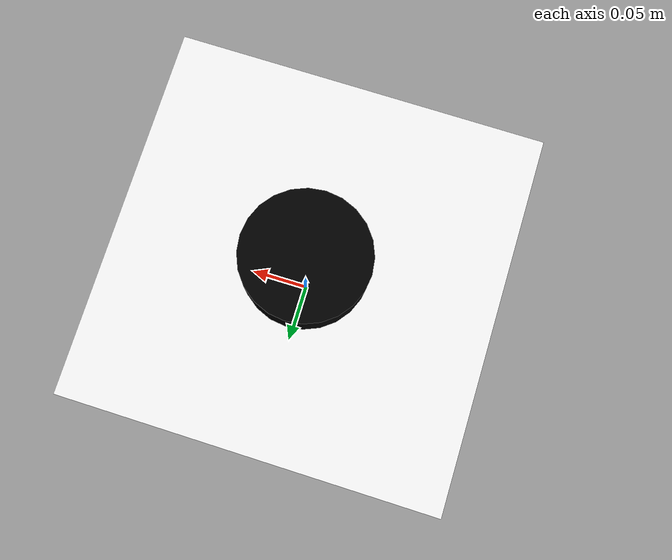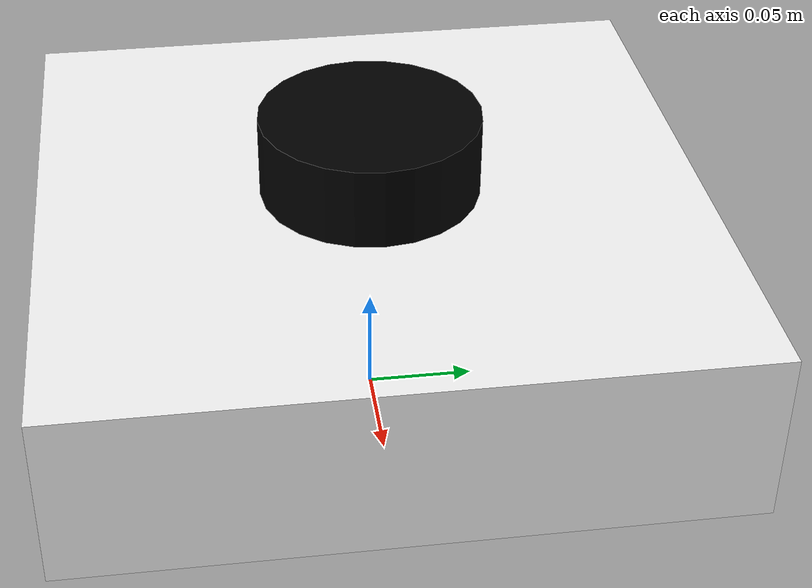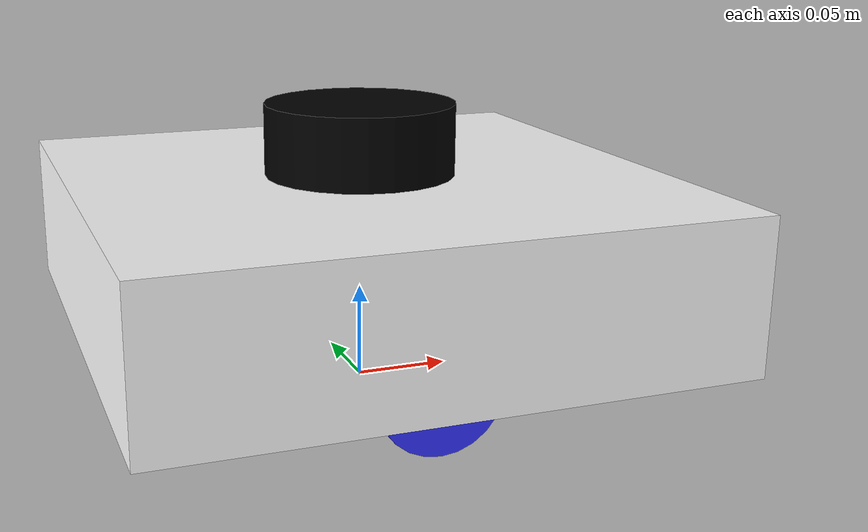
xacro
<?xml version="1.0"?>
<robot xmlns:xacro="http://www.ros.org/wiki/xacro" name="command_center_sim">

  <xacro:include filename="$(find command_center_description)/urdf/command_center.core.xacro"/>

  <gazebo reference="chassis">
    <material>Gazebo/White</material>
  </gazebo>
  <gazebo reference="left_wheel">
    <material>Gazebo/Blue</material>
    <mu1>0.8</mu1>
    <mu2>0.8</mu2>
  </gazebo>
  <gazebo reference="right_wheel">
    <material>Gazebo/Blue</material>
    <mu1>0.8</mu1>
    <mu2>0.8</mu2>
  </gazebo>
  <gazebo reference="caster_wheel">
    <material>Gazebo/Black</material>
    <mu1>0.01</mu1>
    <mu2>0.01</mu2>
  </gazebo>

  <gazebo>
    <plugin filename="gz-sim-diff-drive-system" name="gz::sim::systems::DiffDrive">
      <left_joint>left_wheel_joint</left_joint>
      <right_joint>right_wheel_joint</right_joint>
      <wheel_separation>0.35</wheel_separation>
      <wheel_radius>0.05</wheel_radius>
      <max_linear_acceleration>10</max_linear_acceleration>
      <topic>cmd_vel</topic>
      <odom_topic>odom</odom_topic>
      <tf_topic>tf</tf_topic>
      <frame_id>odom</frame_id>
      <child_frame_id>base_footprint</child_frame_id>
      <odom_publish_frequency>50</odom_publish_frequency>
    </plugin>

    <plugin filename="gz-sim-joint-state-publisher-system"
            name="gz::sim::systems::JointStatePublisher">
      <topic>joint_states</topic>
      <joint_name>right_wheel_joint</joint_name>
      <joint_name>left_wheel_joint</joint_name>
    </plugin>
  </gazebo>

  <gazebo reference="lidar_link">
    <sensor name="laser" type="gpu_lidar">
      <pose>0 0 0 0 0 0</pose>
      <always_on>true</always_on>
      <visualize>true</visualize>
      <update_rate>10</update_rate>
      <topic>scan</topic>
      <gz_frame_id>lidar_link</gz_frame_id>
      <lidar>
        <scan>
          <horizontal>
            <samples>360</samples>
            <resolution>1</resolution>
            <min_angle>-3.14</min_angle>
            <max_angle>3.14</max_angle>
          </horizontal>
        </scan>
        <range>
          <min>0.05</min>
          <max>10.0</max>
          <resolution>0.01</resolution>
        </range>
        <noise>
          <type>gaussian</type>
          <mean>0.0</mean>
          <stddev>0.01</stddev>
        </noise>
      </lidar>
    </sensor>
  </gazebo>

</robot>

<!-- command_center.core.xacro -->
<robot xmlns:xacro="http://www.ros.org/wiki/xacro">

    <xacro:include filename="inertial_macros.xacro" />

    <xacro:property name="pi_const"         value="3.14159265359"/>
    <xacro:property name="wheel_separation" value="0.20"/>
    <xacro:property name="wheel_radius"     value="0.0325"/>
    <xacro:property name="wheel_thickness"  value="0.027"/>
    <xacro:property name="base_length"      value="0.30"/>
    <xacro:property name="base_width"       value="0.30"/>
    <xacro:property name="base_height"      value="0.08"/>
    <xacro:property name="lidar_x"          value="0.0"/>
    <xacro:property name="lidar_y"          value="0.0"/>
    <xacro:property name="lidar_z"          value="0.0975"/>
    <xacro:property name="lidar_radius"     value="0.05"/>
    <xacro:property name="lidar_thickness"  value="0.04"/>

    <material name="white"><color rgba="1 1 1 1"/></material>
    <material name="orange"><color rgba="1 0.3 0.1 1"/></material>
    <material name="blue"><color rgba="0.2 0.2 1 1"/></material>
    <material name="black"><color rgba="0 0 0 1"/></material>

    <link name="base_link"/>
    <link name="base_footprint"/>

    <joint name="base_footprint_joint" type="fixed">
        <parent link="base_footprint"/>
        <child link="base_link"/>
        <origin xyz="0 0 ${wheel_radius}" rpy="0 0 0"/>
    </joint>

    <joint name="chassis_joint" type="fixed">
        <parent link="base_link"/>
        <child link="chassis"/>
        <origin xyz="0 0 0" rpy="0 0 0"/>
    </joint>

    <link name="chassis">
        <visual>
            <origin xyz="0 0 ${base_height/2}" rpy="0 0 0"/>
            <geometry><box size="${base_length} ${base_width} ${base_height}"/></geometry>
            <material name="white"/>
        </visual>
        <collision>
            <origin xyz="0 0 ${base_height/2}" rpy="0 0 0"/>
            <geometry><box size="${base_length} ${base_width} ${base_height}"/></geometry>
        </collision>
        <xacro:inertial_box mass="0.5" x="${base_length}" y="${base_width}" z="${base_height}">
            <origin xyz="0 0 ${base_height/2}" rpy="0 0 0"/>
        </xacro:inertial_box>
    </link>

    <joint name="left_wheel_joint" type="continuous">
        <parent link="base_link"/>
        <child link="left_wheel"/>
        <origin xyz="0 ${wheel_separation/2} 0" rpy="-${pi_const/2} 0 0"/>
        <axis xyz="0 0 1"/>
    </joint>

    <link name="left_wheel">
        <visual>
            <geometry><cylinder length="${wheel_thickness}" radius="${wheel_radius}"/></geometry>
            <material name="blue"/>
        </visual>
        <collision>
            <geometry><cylinder length="${wheel_thickness}" radius="${wheel_radius}"/></geometry>
        </collision>
        <xacro:inertial_cylinder mass="0.1" length="${wheel_thickness}" radius="${wheel_radius}">
            <origin xyz="0 0 0" rpy="0 0 0"/>
        </xacro:inertial_cylinder>
    </link>

    <joint name="right_wheel_joint" type="continuous">
        <parent link="base_link"/>
        <child link="right_wheel"/>
        <origin xyz="0 -${wheel_separation/2} 0" rpy="${pi_const/2} 0 0"/>
        <axis xyz="0 0 1"/>
    </joint>

    <link name="right_wheel">
        <visual>
            <geometry><cylinder length="${wheel_thickness}" radius="${wheel_radius}"/></geometry>
            <material name="blue"/>
        </visual>
        <collision>
            <geometry><cylinder length="${wheel_thickness}" radius="${wheel_radius}"/></geometry>
        </collision>
        <xacro:inertial_cylinder mass="0.1" length="${wheel_thickness}" radius="${wheel_radius}">
            <origin xyz="0 0 0" rpy="0 0 0"/>
        </xacro:inertial_cylinder>
    </link>

    <joint name="lidar_joint" type="fixed">
        <parent link="base_link"/>
        <child link="laser_frame"/>
        <origin xyz="${lidar_x} ${lidar_y} ${lidar_z}" rpy="0 0 0"/>
    </joint>

    <link name="laser_frame">
        <visual>
            <geometry><cylinder length="${lidar_thickness}" radius="${lidar_radius}"/></geometry>
            <material name="black"/>
        </visual>
        <collision>
            <geometry><cylinder length="${lidar_thickness}" radius="${lidar_radius}"/></geometry>
        </collision>
        <xacro:inertial_cylinder mass="0.1" length="${lidar_thickness}" radius="${lidar_radius}">
            <origin xyz="0 0 0" rpy="0 0 0"/>
        </xacro:inertial_cylinder>
    </link>

</robot>
